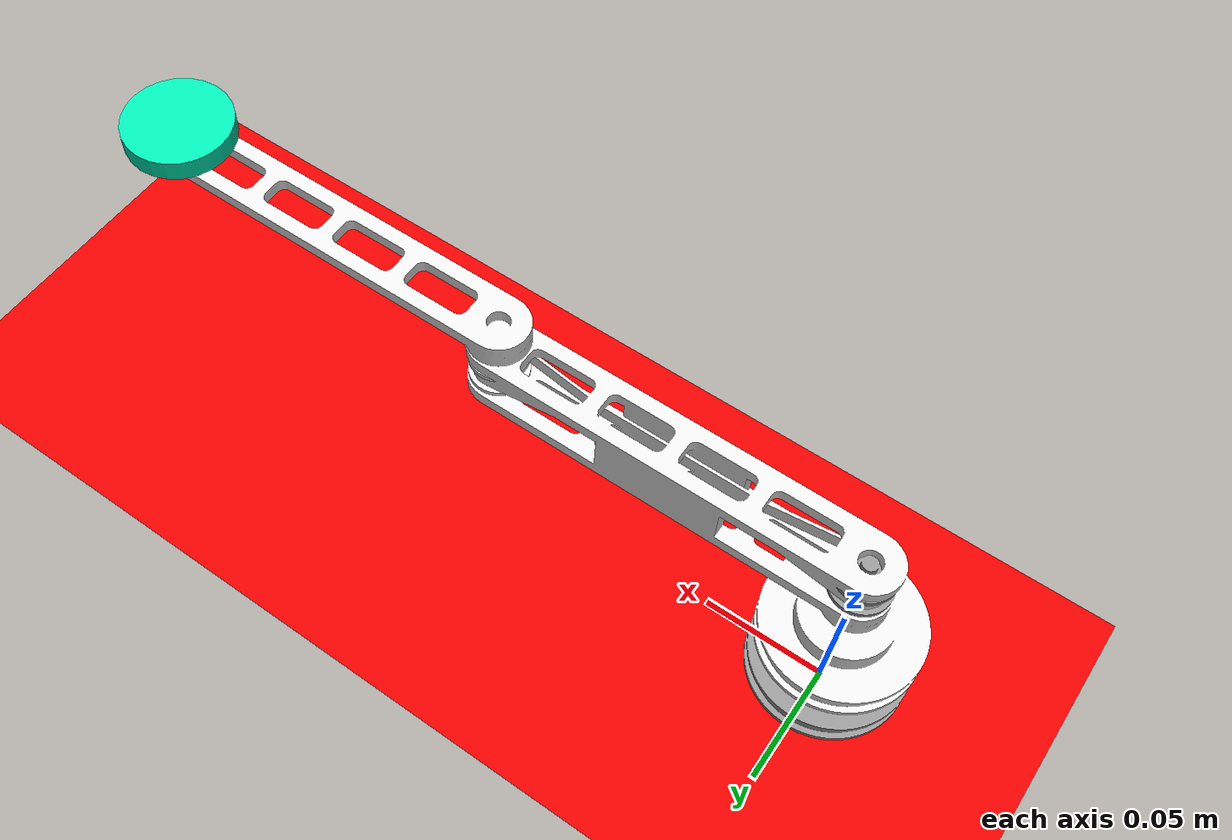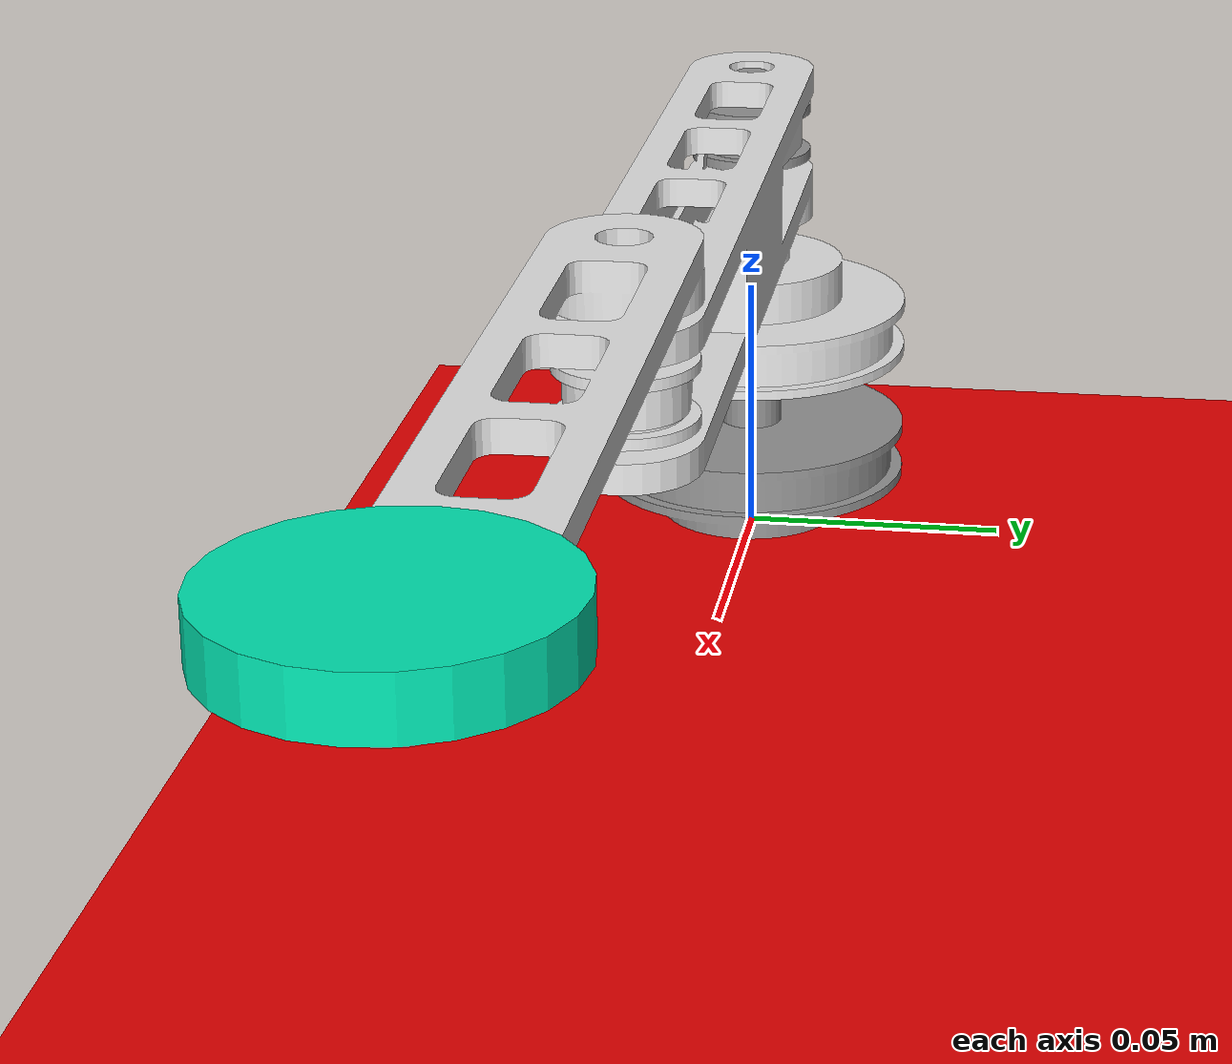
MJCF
<mujoco model="two_link_arm">
    <compiler angle="radian" meshdir="assets" autolimits="true" />
    <option timestep="1e-4" integrator="RK4" gravity="0 -9.81 0">
        <flag energy="enable" />
    </option>

    <asset>
        <material name="sus" rgba="0.58 0.58 0.58 1" />
        <material name="chrome" rgba="0.9 0.9 0.9 1.0" shininess="0.6" specular="0.774597" />
        <material name="cyan_sus" rgba="0 0.9 0.7 1" />

        <mesh file="link_1st.stl" />
        <mesh file="axis_2nd_parent.stl" />
        <mesh file="link_2nd_child.stl" />
    </asset>

    <default>
        <default class="visual">
            <geom type="mesh" contype="0" conaffinity="0" group="2" />
        </default>
    </default>

    <worldbody>
        <light name="spotlight" mode="targetbodycom" target="weight" pos="0 0 0.5" />

        <!-- ground plane -->
        <geom type="plane" size="1.0 1.0 0.1" rgba="0.9 0 0 1" />

        <body name="link_1st" pos="0 0 0.037">
            <inertial mass="0.4009" pos="0.0185 0 0.018" fullinertia="183.885e-6 801.421e-6 739.265e-6 -2.65e-13 -204.073e-6 -1.29e-13"/>
            <joint name="joint1" armature="0" type="hinge" pos="0 0 0" axis="0 0 1" /> <!-- damping="19.2303e-5" solreffriction="0.0001 1" frictionloss="0.032103" -->
            <geom class="visual" mesh="link_1st" material="chrome"/>
        </body>

        <body name="axis_2nd_parent" pos="0 0 0">
            <inertial mass="1e-10" pos="0 0 0.0225" diaginertia="203.646e-6 203.646e-6 108.41e-6" />
            <joint name="joint2_parent" armature="0" type="hinge" pos="0 0 0" axis="0 0 1"/> <!--damping="9.2871e-4" solreffriction="0.0001 1" frictionloss="0.0459" -->
            <geom class="visual" mesh="axis_2nd_parent" material="sus" />
        </body>

        <body name="link_2nd_child" pos="0.15 0 0.071">
            <inertial mass="0.0844" pos="0.032 0 0.0246" fullinertia="12.615e-6 223.227e-6 218.052e-6 6.65e-20 -24.115e-6 2.725e-20"/>
            <joint name="joint2_child" type="hinge" pos="0 0 0" axis="0 0 1" />
            <joint name="joint2_slide_x" type="slide" pos="0 0 0" axis="1 0 0" />
            <joint name="joint2_slide_y" type="slide" pos="0 0 0" axis="0 1 0" />
            <geom class="visual" mesh="link_2nd_child" material="chrome" />

            <site name="end_link" pos="0.15 0 0.036"/>
            <!-- 36mm(offset) + 8.3mm/2(cylinder height/2) = 36mm + 4.15mm = 40.15mm -->
            <body name="weight" pos="0.15 0 0.04015">
                <inertial mass="0.1" pos="0 0 0"/>
                <geom type="cylinder" size="0.022 0.00415" material="cyan_sus" />
            </body>
        </body>
    </worldbody>

    <actuator>
        <motor name="t_servo1" joint="joint1"/>
        <motor name="t_servo2" joint="joint2_parent"/>

        <!-- joint 1 -->
        <!-- joint 2 (parent) -->
        <!-- joint 2 (child) -->

    </actuator>

    <equality>
        <connect name="contact_constraint" active="true" body1="link_1st" body2="link_2nd_child" anchor="0.15 0 0.034" solref="1e-10 1" />
        <joint name="axis_constraint" active="true" joint1="joint2_parent" joint2="joint2_child" solref="1e-10 1"/>
    </equality>

    <sensor>
        <jointvel name="joint1_vel" joint="joint1" />
        <jointvel name="joint2_vel" joint="joint2_parent" />
    </sensor>

</mujoco>
